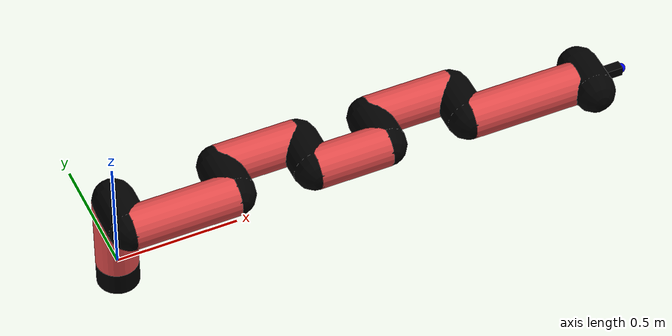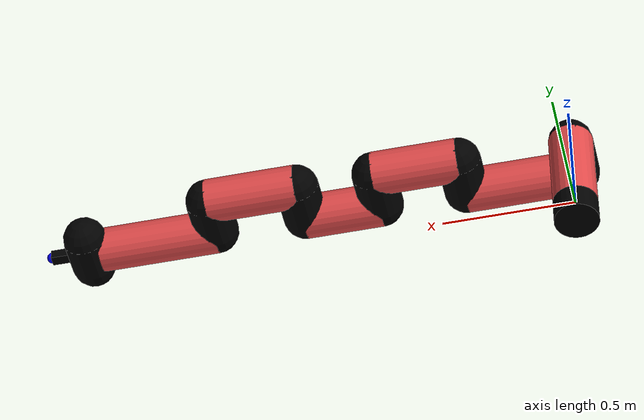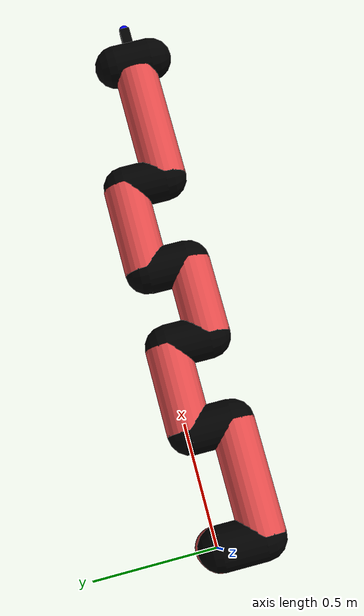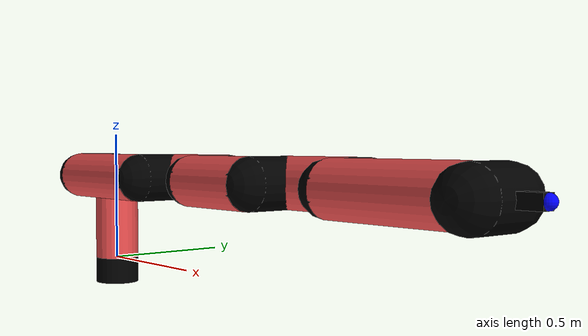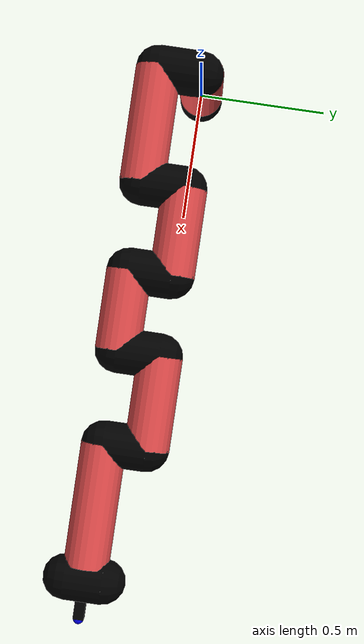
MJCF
<mujoco model="manipulator">
		<compiler angle="degree" coordinate="local" inertiafromgeom="auto" meshdir="meshes/"/>
		<option gravity="0 0 0" integrator="RK4" iterations="30" timestep="0.01"/>

		<default>
		<joint armature="1" limited="true" stiffness="10" damping="15" frictionloss="5.0"/>
		<geom conaffinity="1" condim="3" contype="1" friction=".5 .1 .1" margin="0.002"/>
		<motor ctrllimited="true"/>
		<position ctrllimited="true"/>
		</default>

		<asset>
		<texture builtin="gradient" height="100" rgb1="1.0 1.0 1.0" rgb2="1.0 1.0 1.0" type="skybox" width="100"/>
		<texture builtin="flat" height="32" name="arm_tex" rgb1="0.9 0.3 0.3" type="2d" width="32"/>
		<texture builtin="flat" height="32" name="gripper_tex" rgb1="0.0 0.0 0.0" type="cube" width="32"/>

		<material name="arm_mat" shininess="0.1" specular="0.1" texture="arm_tex"/>
		<material name="gripper_mat" shininess="1" specular="1" texture="gripper_tex"/>
		</asset>

		<worldbody>
		<light cutoff="45" diffuse=".8 .8 .8" dir="0 0.16 -1" directional="false" name="light" pos="0 -2.0 8.0" specular="0.3 0.3 0.3"/>

		<body name="base_link" pos="0 0 -0.1">
		<geom fromto="0 0 0 0 0 0.1" material="arm_mat" name="base_link" rgba="0.0 0.0 0.0 1" size="0.085" type="cylinder"/>
		</body>

		<body name="l1" pos="0 0 0">
<geom fromto="0 0 0 0 0 0.34" material="arm_mat" name="l1" rgba="0.9 0.3 0.3 1" size="0.085" type="cylinder"/>
<geom fromto="0 0 0.34 0 -0.16 0.34" material="arm_mat" name="l1_ex" rgba="0.0 0.0 0.0 1" size="0.085" type="capsule"/>
<joint axis="0 0 1" name="j1" pos="0 0 0" range="-90 90" damping="31.11" frictionloss="8.31"/>

<body name="l2" pos="0 -0.16 0.34">
<geom fromto="0 0 0 0.43 0 0" material="arm_mat" name="l2" rgba="0.9 0.3 0.3 1" size="0.085" type="cylinder"/>
<geom fromto="0.43 0 0 0.43 0.16 0" material="arm_mat" name="l2_ex" rgba="0.0 0.0 0.0 1" size="0.085" type="capsule"/>
<joint axis="0.0 1.0 0.0" name="j2" pos="0 0 0" range="-90 60" damping="27.33" frictionloss="8.86"/>

<body name="l3" pos="0.43 0.16 0">
<geom fromto="0 0 0 0.33 0 0" material="arm_mat" name="l3" rgba="0.9 0.3 0.3 1" size="0.085" type="cylinder"/>
<geom fromto="0.33 0 0 0.33 -0.16 0" material="arm_mat" name="l3_ex" rgba="0.0 0.0 0.0 1" size="0.085" type="capsule"/>
<joint axis="0.0 1.0 0.0" name="j3" pos="0 0 0" range="-30 60" damping="38.42" frictionloss="14.77"/>

<body name="l4" pos="0.33 -0.16 0">
<geom fromto="0 0 0 0.3 0 0" material="arm_mat" name="l4" rgba="0.9 0.3 0.3 1" size="0.085" type="cylinder"/>
<geom fromto="0.3 0 0 0.3 0.16 0" material="arm_mat" name="l4_ex" rgba="0.0 0.0 0.0 1" size="0.085" type="capsule"/>
<joint axis="0.0 1.0 0.0" name="j4" pos="0 0 0" range="-30 60" damping="38.85" frictionloss="11.68"/>

<body name="l5" pos="0.3 0.16 0">
<geom fromto="0 0 0 0.35 0 0" material="arm_mat" name="l5" rgba="0.9 0.3 0.3 1" size="0.085" type="cylinder"/>
<geom fromto="0.35 0 0 0.35 -0.16 0" material="arm_mat" name="l5_ex" rgba="0.0 0.0 0.0 1" size="0.085" type="capsule"/>
<joint axis="0.0 1.0 0.0" name="j5" pos="0 0 0" range="-30 60" damping="26.65" frictionloss="11.55"/>

<body name="l6" pos="0.35 -0.16 0">
<geom fromto="0 0 0 0.46 0 0" material="arm_mat" name="l6" rgba="0.9 0.3 0.3 1" size="0.085" type="cylinder"/>
<joint axis="0.0 1.0 0.0" name="j6" pos="0 0 0" range="-30 60" damping="40.17" frictionloss="14.16"/>

<body name="gripper" pos="0.46 0 0">
<geom fromto="0.05 -0.07 0 0.05 0.07 0" material="gripper_mat" name="gripper" rgba="0.0 0.0 0.0 1" size="0.085" type="capsule"/><joint axis="1 0 0" name="j7" pos="0 0 0" range="-90 90" damping="15" frictionloss="5.0"/><body name="finger" pos="0.1 0 0">
<geom fromto="0 0.0 0 0.1 0.0 0" material="gripper_mat" name="finger" rgba="0.0 0.0 0.0 1" size="0.020 0.06 0.06" type="box"/>
</body>
<site name="current" pos="0.2 0. 0.0" rgba="0. 0. 1.0 1" size="0.02" type="sphere"/>
</body>
</body>
</body>
</body>
</body>
</body>
</body>
</worldbody>
<actuator>
<motor ctrllimited="true" ctrlrange="-1.0 1.0" joint="j1" gear="32.34"/>
<motor ctrllimited="true" ctrlrange="-1.0 1.0" joint="j2" gear="114.68"/>
<motor ctrllimited="true" ctrlrange="-1.0 1.0" joint="j3" gear="103.88"/>
<motor ctrllimited="true" ctrlrange="-1.0 1.0" joint="j4" gear="94.28"/>
<motor ctrllimited="true" ctrlrange="-1.0 1.0" joint="j5" gear="92.84"/>
<motor ctrllimited="true" ctrlrange="-1.0 1.0" joint="j6" gear="105.68"/>
<motor ctrllimited="true" ctrlrange="-1.0 1.0" joint="j7" gear="80"/>
</actuator>
</mujoco>
